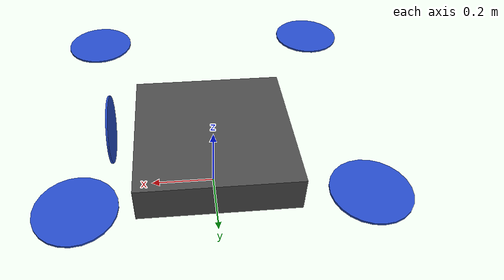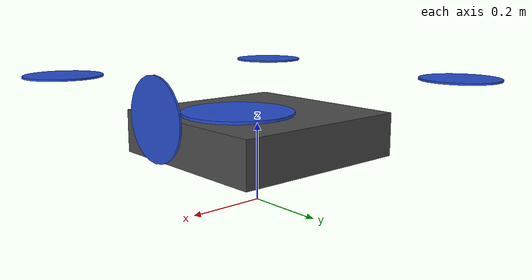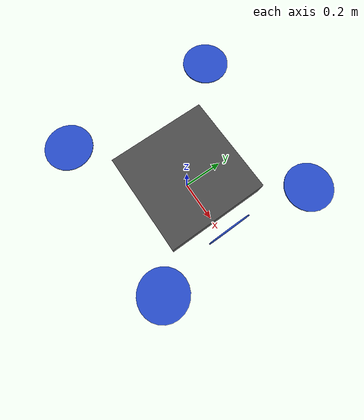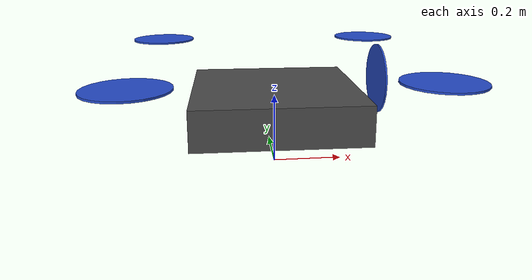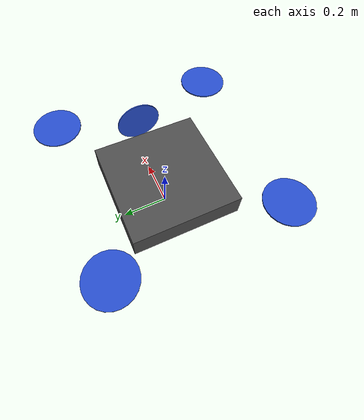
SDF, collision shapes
<?xml version="1.0"?>
<sdf version='1.5'>
  <model name='plane'>
    <pose>0 0 0.246 0 0 0</pose>
    <link name='base_link'>
      <pose>0 0 0 0 0 0</pose>
      <inertial>
        <pose>0 0 0 0 0 0</pose>
        <mass>1.5</mass>
        <inertia>
          <ixx>0.197563</ixx>
          <ixy>0</ixy>
          <ixz>0</ixz>
          <iyy>0.1458929</iyy>
          <iyz>0</iyz>
          <izz>0.1477</izz>
        </inertia>
      </inertial>
      <collision name='base_link_collision'>
        <pose>0 0 -0.07 0 0 0</pose>
        <geometry>
          <box>
            <size>0.47 0.47 0.11</size>
          </box>
        </geometry>
        <surface>
          <contact>
            <ode>
              <max_vel>10</max_vel>
              <min_depth>0.01</min_depth>
            </ode>
          </contact>
        </surface>
      </collision>
      <visual name='base_link_visual'>
        <pose>0.07 0 -0.08 0 0 0</pose>
        <geometry>
          <mesh>
            <scale>0.1 0.1 0.1</scale>
            <uri>model://plane/meshes/body.dae</uri>
          </mesh>
        </geometry>
        <material>
          <script>
            <name>Gazebo/DarkGrey</name>
            <uri>__default__</uri>
          </script>
        </material>
        <visual name='left_motor_column'>
          <pose>0 0.35 0.01 0 0 0</pose>
          <geometry>
            <box>
              <size>0.74 0.03 0.03</size>
            </box>
          </geometry>
          <material>
            <script>
              <name>Gazebo/DarkGrey</name>
              <uri>__default__</uri>
            </script>
          </material>
        </visual>
        <visual name='right_motor_column'>
          <pose>0 -0.35 0.01 0 0 0</pose>
          <geometry>
            <box>
              <size>0.74 0.03 0.03</size>
            </box>
          </geometry>
          <material>
            <script>
              <name>Gazebo/DarkGrey</name>
              <uri>__default__</uri>
            </script>
          </material>
        </visual>
        <visual name='m0'>
          <pose>-0.35 0.35 0.045 0 0 0</pose>
          <geometry>
            <cylinder>
              <length>0.035</length>
              <radius>0.02</radius>
            </cylinder>
          </geometry>
          <material>
            <script>
              <name>Gazebo/DarkGrey</name>
              <uri>__default__</uri>
            </script>
          </material>
        </visual>
        <visual name='m1'>
          <pose>-0.35 -0.35 0.045 0 0 0</pose>
          <geometry>
            <cylinder>
              <length>0.035</length>
              <radius>0.02</radius>
            </cylinder>
          </geometry>
          <material>
            <script>
              <name>Gazebo/DarkGrey</name>
              <uri>__default__</uri>
            </script>
          </material>
        </visual>
        <visual name='m2'>
          <pose>0.35 -0.35 0.045 0 0 0</pose>
          <geometry>
            <cylinder>
              <length>0.035</length>
              <radius>0.02</radius>
            </cylinder>
          </geometry>
          <material>
            <script>
              <name>Gazebo/DarkGrey</name>
              <uri>__default__</uri>
            </script>
          </material>
        </visual>
        <visual name='m3'>
          <pose>0.35 0.35 0.045 0 0 0</pose>
          <geometry>
            <cylinder>
              <length>0.035</length>
              <radius>0.02</radius>
            </cylinder>
          </geometry>
          <material>
            <script>
              <name>Gazebo/DarkGrey</name>
              <uri>__default__</uri>
            </script>
          </material>
        </visual>
      </visual>
      <gravity>1</gravity>
      <velocity_decay/>
      <self_collide>0</self_collide>
    </link>
    <link name='rotor_0'>
      <pose>0.35 -0.35 0.07 0 0 0</pose>
      <inertial>
        <pose>0 0 0 0 0 0</pose>
        <mass>0.005</mass>
        <inertia>
          <ixx>9.75e-07</ixx>
          <ixy>0</ixy>
          <ixz>0</ixz>
          <iyy>0.000166704</iyy>
          <iyz>0</iyz>
          <izz>0.000167604</izz>
        </inertia>
      </inertial>
      <collision name='rotor_0_collision'>
        <pose>0 0 0 0 0 0</pose>
        <geometry>
          <cylinder>
            <length>0.005</length>
            <radius>0.1</radius>
          </cylinder>
        </geometry>
        <surface>
          <contact>
            <ode/>
          </contact>
          <friction>
            <ode/>
          </friction>
        </surface>
      </collision>
      <visual name='rotor_0_visual'>
        <pose>0 0 0 0 0 0</pose>
        <geometry>
          <mesh>
            <scale>1 1 1</scale>
            <uri>model://standard_vtol/meshes/iris_prop_ccw.dae</uri>
          </mesh>
        </geometry>
        <material>
          <script>
            <name>Gazebo/Blue</name>
            <uri>__default__</uri>
          </script>
        </material>
      </visual>
      <gravity>1</gravity>
      <velocity_decay/>
      <self_collide>0</self_collide>
    </link>
    <joint name='rotor_0_joint' type='revolute'>
      <child>rotor_0</child>
      <parent>base_link</parent>
      <axis>
        <xyz>0 0 1</xyz>
        <limit>
          <lower>-1e+16</lower>
          <upper>1e+16</upper>
        </limit>
        <dynamics>
          <spring_reference>0</spring_reference>
          <spring_stiffness>0</spring_stiffness>
        </dynamics>
        <use_parent_model_frame>1</use_parent_model_frame>
      </axis>
    </joint>
    <link name='rotor_1'>
      <pose>-0.35 0.35 0.07 0 0 0</pose>
      <inertial>
        <pose>0 0 0 0 0 0</pose>
        <mass>0.005</mass>
        <inertia>
          <ixx>9.75e-07</ixx>
          <ixy>0</ixy>
          <ixz>0</ixz>
          <iyy>0.000166704</iyy>
          <iyz>0</iyz>
          <izz>0.000167604</izz>
        </inertia>
      </inertial>
      <collision name='rotor_1_collision'>
        <pose>0 0 0 0 0 0</pose>
        <geometry>
          <cylinder>
            <length>0.005</length>
            <radius>0.1</radius>
          </cylinder>
        </geometry>
        <surface>
          <contact>
            <ode/>
          </contact>
          <friction>
            <ode/>
          </friction>
        </surface>
      </collision>
      <visual name='rotor_1_visual'>
        <pose>0 0 0 0 0 0</pose>
        <geometry>
          <mesh>
            <scale>1 1 1</scale>
            <uri>model://standard_vtol/meshes/iris_prop_ccw.dae</uri>
          </mesh>
        </geometry>
        <material>
          <script>
            <name>Gazebo/Blue</name>
            <uri>__default__</uri>
          </script>
        </material>
      </visual>
      <gravity>1</gravity>
      <velocity_decay/>
      <self_collide>0</self_collide>
    </link>
    <joint name='rotor_1_joint' type='revolute'>
      <child>rotor_1</child>
      <parent>base_link</parent>
      <axis>
        <xyz>0 0 1</xyz>
        <limit>
          <lower>-1e+16</lower>
          <upper>1e+16</upper>
        </limit>
        <dynamics>
          <spring_reference>0</spring_reference>
          <spring_stiffness>0</spring_stiffness>
        </dynamics>
        <use_parent_model_frame>1</use_parent_model_frame>
      </axis>
    </joint>
    <link name='rotor_2'>
      <pose>0.35 0.35 0.07 0 0 0</pose>
      <inertial>
        <pose>0 0 0 0 0 0</pose>
        <mass>0.005</mass>
        <inertia>
          <ixx>9.75e-07</ixx>
          <ixy>0</ixy>
          <ixz>0</ixz>
          <iyy>0.000166704</iyy>
          <iyz>0</iyz>
          <izz>0.000167604</izz>
        </inertia>
      </inertial>
      <collision name='rotor_2_collision'>
        <pose>0 0 0 0 0 0</pose>
        <geometry>
          <cylinder>
            <length>0.005</length>
            <radius>0.1</radius>
          </cylinder>
        </geometry>
        <surface>
          <contact>
            <ode/>
          </contact>
          <friction>
            <ode/>
          </friction>
        </surface>
      </collision>
      <visual name='rotor_2_visual'>
        <pose>0 0 0 0 0 0</pose>
        <geometry>
          <mesh>
            <scale>1 1 1</scale>
            <uri>model://standard_vtol/meshes/iris_prop_ccw.dae</uri>
          </mesh>
        </geometry>
        <material>
          <script>
            <name>Gazebo/Blue</name>
            <uri>__default__</uri>
          </script>
        </material>
      </visual>
      <gravity>1</gravity>
      <velocity_decay/>
      <self_collide>0</self_collide>
    </link>
    <joint name='rotor_2_joint' type='revolute'>
      <child>rotor_2</child>
      <parent>base_link</parent>
      <axis>
        <xyz>0 0 1</xyz>
        <limit>
          <lower>-1e+16</lower>
          <upper>1e+16</upper>
        </limit>
        <dynamics>
          <spring_reference>0</spring_reference>
          <spring_stiffness>0</spring_stiffness>
        </dynamics>
        <use_parent_model_frame>1</use_parent_model_frame>
      </axis>
    </joint>
    <link name='rotor_3'>
      <pose>-0.35 -0.35 0.07 0 0 0</pose>
      <inertial>
        <pose>0 0 0 0 0 0</pose>
        <mass>0.005</mass>
        <inertia>
          <ixx>9.75e-07</ixx>
          <ixy>0</ixy>
          <ixz>0</ixz>
          <iyy>0.000166704</iyy>
          <iyz>0</iyz>
          <izz>0.000167604</izz>
        </inertia>
      </inertial>
      <collision name='rotor_3_collision'>
        <pose>0 0 0 0 0 0</pose>
        <geometry>
          <cylinder>
            <length>0.005</length>
            <radius>0.1</radius>
          </cylinder>
        </geometry>
        <surface>
          <contact>
            <ode/>
          </contact>
          <friction>
            <ode/>
          </friction>
        </surface>
      </collision>
      <visual name='rotor_3_visual'>
        <pose>0 0 0 0 0 0</pose>
        <geometry>
          <mesh>
            <scale>1 1 1</scale>
            <uri>model://standard_vtol/meshes/iris_prop_ccw.dae</uri>
          </mesh>
        </geometry>
        <material>
          <script>
            <name>Gazebo/Blue</name>
            <uri>__default__</uri>
          </script>
        </material>
      </visual>
      <gravity>1</gravity>
      <velocity_decay/>
      <self_collide>0</self_collide>
    </link>
    <joint name='rotor_3_joint' type='revolute'>
      <child>rotor_3</child>
      <parent>base_link</parent>
      <axis>
        <xyz>0 0 1</xyz>
        <limit>
          <lower>-1e+16</lower>
          <upper>1e+16</upper>
        </limit>
        <dynamics>
          <spring_reference>0</spring_reference>
          <spring_stiffness>0</spring_stiffness>
        </dynamics>
        <use_parent_model_frame>1</use_parent_model_frame>
      </axis>
    </joint>

    <link name='plane/imu_link'>
      <pose>0 0 0 0 0 0</pose>
      <inertial>
        <pose>0 0 0 0 0 0</pose>
        <mass>0.015</mass>
        <inertia>
          <ixx>1e-05</ixx>
          <ixy>0</ixy>
          <ixz>0</ixz>
          <iyy>1e-05</iyy>
          <iyz>0</iyz>
          <izz>1e-05</izz>
        </inertia>
      </inertial>
    </link>
    <joint name='plane/imu_joint' type='revolute'>
      <child>plane/imu_link</child>
      <parent>base_link</parent>
      <axis>
        <xyz>1 0 0</xyz>
        <limit>
          <lower>0</lower>
          <upper>0</upper>
          <effort>0</effort>
          <velocity>0</velocity>
        </limit>
        <dynamics>
          <spring_reference>0</spring_reference>
          <spring_stiffness>0</spring_stiffness>
        </dynamics>
        <use_parent_model_frame>1</use_parent_model_frame>
      </axis>
    </joint>
    <link name='rotor_puller'>
      <pose>0.3 0 0.0 0 1.57 0</pose>
      <inertial>
        <pose>0 0 0 0 0 0</pose>
        <mass>0.005</mass>
        <inertia>
          <ixx>9.75e-07</ixx>
          <ixy>0</ixy>
          <ixz>0</ixz>
          <iyy>0.000166704</iyy>
          <iyz>0</iyz>
          <izz>0.000167604</izz>
        </inertia>
      </inertial>
      <collision name='rotor_puller_collision'>
        <pose>0.0 0 0.0 0 0 0</pose>
        <geometry>
          <cylinder>
            <length>0.005</length>
            <radius>0.1</radius>
          </cylinder>
        </geometry>
        <surface>
          <contact>
            <ode/>
          </contact>
          <friction>
            <ode/>
          </friction>
        </surface>
      </collision>
      <visual name='rotor_puller_visual'>
        <pose>0 0 -0.09 0 0 0</pose>
        <geometry>
          <mesh>
            <scale>1 1 1</scale>
            <uri>model://plane/meshes/iris_prop_ccw.dae</uri>
          </mesh>
        </geometry>
        <material>
          <script>
            <name>Gazebo/Blue</name>
            <uri>__default__</uri>
          </script>
        </material>
      </visual>
      <gravity>1</gravity>
      <velocity_decay/>
      <self_collide>0</self_collide>
    </link>
    <joint name='rotor_puller_joint' type='revolute'>
      <child>rotor_puller</child>
      <parent>base_link</parent>
      <axis>
        <xyz>1 0 0</xyz>
        <limit>
          <lower>-1e+16</lower>
          <upper>1e+16</upper>
        </limit>
        <dynamics>
          <spring_reference>0</spring_reference>
          <spring_stiffness>0</spring_stiffness>
        </dynamics>
        <use_parent_model_frame>1</use_parent_model_frame>
      </axis>
    </joint>

    <link name="left_elevon">
      <inertial>
        <mass>0.00000001</mass>
        <inertia>
          <ixx>0.000001</ixx>
          <ixy>0.0</ixy>
          <iyy>0.000001</iyy>
          <ixz>0.0</ixz>
          <iyz>0.0</iyz>
          <izz>0.000001</izz>
        </inertia>
        <pose>0 0.3 0 0.00 0 0.0</pose>
      </inertial>
    </link>
    <link name="right_elevon">
      <inertial>
        <mass>0.00000001</mass>
        <inertia>
          <ixx>0.000001</ixx>
          <ixy>0.0</ixy>
          <iyy>0.000001</iyy>
          <ixz>0.0</ixz>
          <iyz>0.0</iyz>
          <izz>0.000001</izz>
        </inertia>
        <pose>0 -0.3 0 0.00 0 0.0</pose>
      </inertial>
    </link>
    <link name="elevator">
      <inertial>
        <mass>0.00000001</mass>
        <inertia>
          <ixx>0.000001</ixx>
          <ixy>0.0</ixy>
          <iyy>0.000001</iyy>
          <ixz>0.0</ixz>
          <iyz>0.0</iyz>
          <izz>0.000001</izz>
        </inertia>
        <pose> -0.5 0 0 0.00 0 0.0</pose>
      </inertial>
    </link>
    <link name="rudder">
      <inertial>
        <mass>0.00000001</mass>
        <inertia>
          <ixx>0.000001</ixx>
          <ixy>0.0</ixy>
          <iyy>0.000001</iyy>
          <ixz>0.0</ixz>
          <iyz>0.0</iyz>
          <izz>0.000001</izz>
        </inertia>
        <pose>-0.5 0 0.05 0 0 0 </pose>
      </inertial>
    </link>
    <joint name='left_elevon_joint' type='revolute'>
      <parent>base_link</parent>
      <child>left_elevon</child>
      <pose>0 0.3 0 0.00 0 0.0</pose>
      <axis>
        <xyz>0 1 0</xyz>
        <limit>
          <!-- -30/+30 deg. -->
          <lower>-0.53</lower>
          <upper>0.53</upper>
        </limit>
        <dynamics>
          <damping>1.000</damping>
        </dynamics>
      </axis>
      <physics>
        <ode>
          <implicit_spring_damper>1</implicit_spring_damper>
        </ode>
      </physics>
    </joint>
    <joint name='right_elevon_joint' type='revolute'>
      <parent>base_link</parent>
      <child>right_elevon</child>
      <pose>0 -0.3 0 0.00 0 0.0</pose>
      <axis>
        <xyz>0 1 0</xyz>
        <limit>
          <!-- -30/+30 deg. -->
          <lower>-0.53</lower>
          <upper>0.53</upper>
        </limit>
        <dynamics>
          <damping>1.000</damping>
        </dynamics>
      </axis>
      <physics>
        <ode>
          <implicit_spring_damper>1</implicit_spring_damper>
        </ode>
      </physics>
    </joint>
    <joint name='elevator_joint' type='revolute'>
      <parent>base_link</parent>
      <child>elevator</child>
      <pose> -0.5 0 0 0 0 0</pose>
      <axis>
        <xyz>0 1 0</xyz>
        <limit>
          <!-- -30/+30 deg. -->
          <lower>-0.53</lower>
          <upper>0.53</upper>
        </limit>
        <dynamics>
          <damping>1.000</damping>
        </dynamics>
      </axis>
      <physics>
        <ode>
          <implicit_spring_damper>1</implicit_spring_damper>
        </ode>
      </physics>
    </joint>
    <joint name='rudder_joint' type='revolute'>
      <parent>base_link</parent>
      <child>rudder</child>
      <pose>-0.5 0 0.05 0.00 0 0.0</pose>
      <axis>
        <xyz>1 0 0</xyz>
        <limit>
          <!-- -30/+30 deg. -->
          <lower>-0.01</lower>
          <upper>0.01</upper>
        </limit>
        <dynamics>
          <damping>1.000</damping>
        </dynamics>
      </axis>
      <physics>
        <ode>
          <implicit_spring_damper>1</implicit_spring_damper>
        </ode>
      </physics>
    </joint>
    <plugin name="left_wing" filename="libLiftDragPlugin.so">
      <a0>0.05984281113</a0>
      <cla>4.752798721</cla>
      <cda>0.6417112299</cda>
      <cma>-1.8</cma>
      <alpha_stall>0.3391428111</alpha_stall>
      <cla_stall>-3.85</cla_stall>
      <cda_stall>-0.9233984055</cda_stall>
      <cma_stall>0</cma_stall>
      <cp>-0.05 0.3 0.05</cp>
      <area>0.12</area>
      <air_density>1.2041</air_density>
      <forward>1 0 0</forward>
      <upward>0 0 1</upward>
      <link_name>base_link</link_name>
      <control_joint_name>
        left_elevon_joint
      </control_joint_name>
      <control_joint_rad_to_cl>-0.5</control_joint_rad_to_cl>
    </plugin>
    <plugin name="right_wing" filename="libLiftDragPlugin.so">
      <a0>0.05984281113</a0>
      <cla>4.752798721</cla>
      <cda>0.6417112299</cda>
      <cma>-1.8</cma>
      <alpha_stall>0.3391428111</alpha_stall>
      <cla_stall>-3.85</cla_stall>
      <cda_stall>-0.9233984055</cda_stall>
      <cma_stall>0</cma_stall>
      <cp>-0.05 -0.3 0.05</cp>
      <area>0.12</area>
      <air_density>1.2041</air_density>
      <forward>1 0 0</forward>
      <upward>0 0 1</upward>
      <link_name>base_link</link_name>
      <control_joint_name>
        right_elevon_joint
      </control_joint_name>
      <control_joint_rad_to_cl>-0.5</control_joint_rad_to_cl>
    </plugin>
    <plugin name="elevator" filename="libLiftDragPlugin.so">
      <a0>-0.2</a0>
      <cla>4.752798721</cla>
      <cda>0.6417112299</cda>
      <cma>-1.8</cma>
      <alpha_stall>0.3391428111</alpha_stall>
      <cla_stall>-3.85</cla_stall>
      <cda_stall>-0.9233984055</cda_stall>
      <cma_stall>0</cma_stall>
      <cp>-0.5 0 0</cp>
      <area>0.01</area>
      <air_density>1.2041</air_density>
      <forward>1 0 0</forward>
      <upward>0 0 1</upward>
      <link_name>base_link</link_name>
      <control_joint_name>
        elevator_joint
      </control_joint_name>
      <control_joint_rad_to_cl>-4.0</control_joint_rad_to_cl>
    </plugin>
    <plugin name="rudder" filename="libLiftDragPlugin.so">
      <a0>0.0</a0>
      <cla>4.752798721</cla>
      <cda>0.6417112299</cda>
      <cma>-1.8</cma>
      <alpha_stall>0.3391428111</alpha_stall>
      <cla_stall>-3.85</cla_stall>
      <cda_stall>-0.9233984055</cda_stall>
      <cma_stall>0</cma_stall>
      <cp>-0.5 0 0.05</cp>
      <area>0.02</area>
      <air_density>1.2041</air_density>
      <forward>1 0 0</forward>
      <upward>0 1 0</upward>
      <link_name>base_link</link_name>
    </plugin>
    <plugin name='puller' filename='libgazebo_motor_model.so'>
      <robotNamespace></robotNamespace>
      <jointName>rotor_puller_joint</jointName>
      <linkName>rotor_puller</linkName>
      <turningDirection>cw</turningDirection>
      <timeConstantUp>0.0125</timeConstantUp>
      <timeConstantDown>0.025</timeConstantDown>
      <maxRotVelocity>3500</maxRotVelocity>
      <motorConstant>8.54858e-06</motorConstant>
      <momentConstant>0.01</momentConstant>
      <commandSubTopic>/gazebo/command/motor_speed</commandSubTopic>
      <motorNumber>4</motorNumber>
      <rotorDragCoefficient>8.06428e-05</rotorDragCoefficient>
      <rollingMomentCoefficient>1e-06</rollingMomentCoefficient>
      <motorSpeedPubTopic>/motor_speed/4</motorSpeedPubTopic>
      <rotorVelocitySlowdownSim>10</rotorVelocitySlowdownSim>
    </plugin>
    <plugin name='gazebo_imu_plugin' filename='libgazebo_imu_plugin.so'>
      <robotNamespace></robotNamespace>
      <linkName>plane/imu_link</linkName>
      <imuTopic>/imu</imuTopic>
      <gyroscopeNoiseDensity>0.0003394</gyroscopeNoiseDensity>
      <gyroscopeRandomWalk>3.8785e-05</gyroscopeRandomWalk>
      <gyroscopeBiasCorrelationTime>1000.0</gyroscopeBiasCorrelationTime>
      <gyroscopeTurnOnBiasSigma>0.0087</gyroscopeTurnOnBiasSigma>
      <accelerometerNoiseDensity>0.004</accelerometerNoiseDensity>
      <accelerometerRandomWalk>0.006</accelerometerRandomWalk>
      <accelerometerBiasCorrelationTime>300.0</accelerometerBiasCorrelationTime>
      <accelerometerTurnOnBiasSigma>0.196</accelerometerTurnOnBiasSigma>
    </plugin>
    <plugin name='wind_plugin' filename='libgazebo_wind_plugin.so'>
      <frameId>base_link</frameId>
      <linkName>base_link</linkName>
      <robotNamespace/>
      <xyzOffset>1 0 0</xyzOffset>
      <windDirection>0 1 0</windDirection>
      <windForceMean>0.7</windForceMean>
      <windGustDirection>0 0 0</windGustDirection>
      <windGustDuration>0</windGustDuration>
      <windGustStart>0</windGustStart>
      <windGustForceMean>0</windGustForceMean>
    </plugin>
    <plugin name="gps_plugin" filename="libgazebo_gps_plugin.so">
        <robotNamespace></robotNamespace>
        <gpsNoise>true</gpsNoise>
    </plugin>
    <plugin name='magnetometer_plugin' filename='libgazebo_magnetometer_plugin.so'>
      <robotNamespace/>
      <pubRate>20</pubRate>
      <noiseDensity>0.0004</noiseDensity>
      <randomWalk>6.4e-06</randomWalk>
      <biasCorrelationTime>600</biasCorrelationTime>
      <magTopic>/mag</magTopic>
    </plugin>
    <plugin name='barometer_plugin' filename='libgazebo_barometer_plugin.so'>
      <robotNamespace/>
      <pubRate>10</pubRate>
      <baroTopic>/baro</baroTopic>
    </plugin>
    <plugin name='mavlink_interface' filename='libgazebo_mavlink_interface.so'>
      <robotNamespace></robotNamespace>
      <imuSubTopic>/imu</imuSubTopic>
      <gpsSubTopic>/gps</gpsSubTopic>
      <magSubTopic>/mag</magSubTopic>
      <baroSubTopic>/baro</baroSubTopic>
      <mavlink_addr>INADDR_ANY</mavlink_addr>
      <mavlink_udp_port>14560</mavlink_udp_port>
      <serialEnabled>false</serialEnabled>
      <serialDevice>/dev/ttyACM0</serialDevice>
      <baudRate>921600</baudRate>
      <qgc_addr>INADDR_ANY</qgc_addr>
      <qgc_udp_port>14550</qgc_udp_port>
      <sdk_addr>INADDR_ANY</sdk_addr>
      <sdk_udp_port>14540</sdk_udp_port>
      <hil_mode>false</hil_mode>
      <hil_state_level>false</hil_state_level>
      <enable_lockstep>true</enable_lockstep>
      <use_tcp>true</use_tcp>
      <motorSpeedCommandPubTopic>/gazebo/command/motor_speed</motorSpeedCommandPubTopic>
      <control_channels>
        <channel name="rotor4">
          <input_index>4</input_index>
          <input_offset>0</input_offset>
          <input_scaling>3500</input_scaling>
          <zero_position_disarmed>0</zero_position_disarmed>
          <zero_position_armed>0</zero_position_armed>
          <joint_control_type>velocity</joint_control_type>
          <joint_name>rotor_puller_joint</joint_name>
        </channel>
        <channel name="left_elevon">
          <input_index>5</input_index>
          <input_offset>0</input_offset>
          <input_scaling>1</input_scaling>
          <zero_position_disarmed>0</zero_position_disarmed>
          <zero_position_armed>0</zero_position_armed>
          <joint_control_type>position_kinematic</joint_control_type>
          <joint_name>left_elevon_joint</joint_name>
        </channel>
        <channel name="right_elevon">
          <input_index>6</input_index>
          <input_offset>0</input_offset>
          <input_scaling>1</input_scaling>
          <zero_position_disarmed>0</zero_position_disarmed>
          <zero_position_armed>0</zero_position_armed>
          <joint_control_type>position_kinematic</joint_control_type>
          <joint_name>right_elevon_joint</joint_name>
        </channel>
        <channel name="elevator">
          <input_index>7</input_index>
          <input_offset>0</input_offset>
          <input_scaling>1</input_scaling>
          <zero_position_disarmed>0</zero_position_disarmed>
          <zero_position_armed>0</zero_position_armed>
          <joint_control_type>position_kinematic</joint_control_type>
          <joint_name>elevator_joint</joint_name>
        </channel>
      </control_channels>
    </plugin>
    <static>0</static>
  </model>
</sdf>
